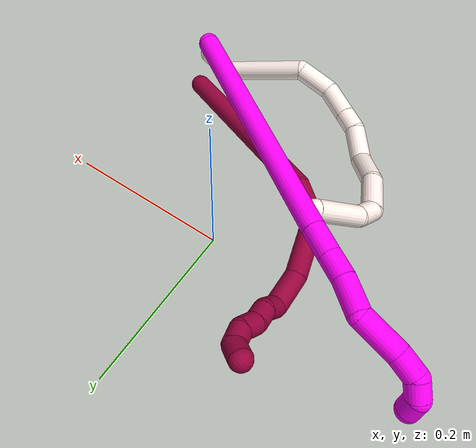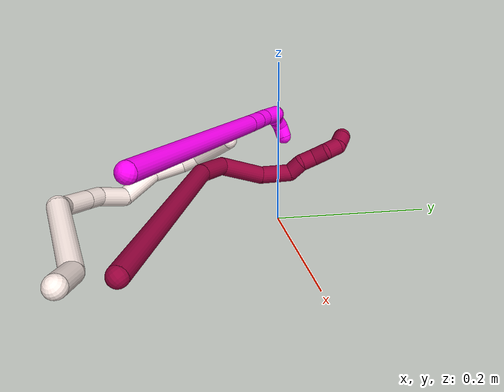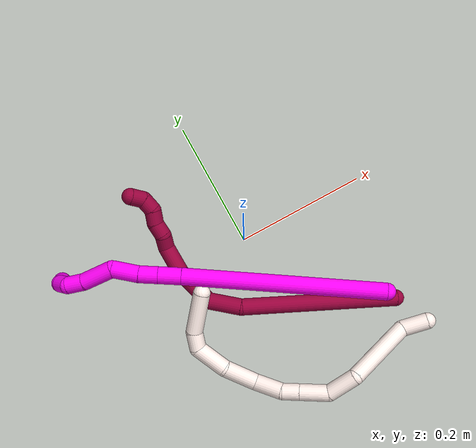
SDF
<sdf version="1.7">
 <world name="default">
  <model name="8">
   <static>0</static>
   <link name="8">
    <collision name="collision-cylinder-e_1_1_4">
     <pose>-0.108845 0.035469 0.030251 -0.86463 -1.16614 0.59087</pose>
     <geometry><cylinder><radius>0.0125</radius><length>0.236815</length></cylinder></geometry>
     <surface>
      <friction><ode><mu>1.16</mu><mu2>1.16</mu2><slip1>0</slip1><slip2>0</slip2></ode></friction>
      <contact><ode><kp>1e+06</kp><kd>1</kd><max_vel>0</max_vel><min_depth>0.001</min_depth></ode></contact>
     </surface>
    </collision>
    <visual name="visual-cylinder-e_1_1_4">
     <pose>-0.108845 0.035469 0.030251 -0.86463 -1.16614 0.59087</pose>
     <geometry><cylinder><radius>0.0125</radius><length>0.236815</length></cylinder></geometry>
     <material><ambient>0.584314 0 0.227451 1</ambient></material>
    </visual>
    <collision name="collision-cylinder-e_2_4_5">
     <pose>-0.240216 0.079653 0.058869 -1.75599 -1.19579 1.37422</pose>
     <geometry><cylinder><radius>0.0125</radius><length>0.048418</length></cylinder></geometry>
     <surface>
      <friction><ode><mu>1.16</mu><mu2>1.16</mu2><slip1>0</slip1><slip2>0</slip2></ode></friction>
      <contact><ode><kp>1e+06</kp><kd>1</kd><max_vel>0</max_vel><min_depth>0.001</min_depth></ode></contact>
     </surface>
    </collision>
    <visual name="visual-cylinder-e_2_4_5">
     <pose>-0.240216 0.079653 0.058869 -1.75599 -1.19579 1.37422</pose>
     <geometry><cylinder><radius>0.0125</radius><length>0.048418</length></cylinder></geometry>
     <material><ambient>0.584314 0 0.227451 1</ambient></material>
    </visual>
    <collision name="collision-cylinder-e_3_5_6">
     <pose>-0.283245 0.102229 0.036137 -2.56037 -0.682105 1.74116</pose>
     <geometry><cylinder><radius>0.0125</radius><length>0.065044</length></cylinder></geometry>
     <surface>
      <friction><ode><mu>1.16</mu><mu2>1.16</mu2><slip1>0</slip1><slip2>0</slip2></ode></friction>
      <contact><ode><kp>1e+06</kp><kd>1</kd><max_vel>0</max_vel><min_depth>0.001</min_depth></ode></contact>
     </surface>
    </collision>
    <visual name="visual-cylinder-e_3_5_6">
     <pose>-0.283245 0.102229 0.036137 -2.56037 -0.682105 1.74116</pose>
     <geometry><cylinder><radius>0.0125</radius><length>0.065044</length></cylinder></geometry>
     <material><ambient>0.584314 0 0.227451 1</ambient></material>
    </visual>
    <collision name="collision-cylinder-e_4_6_7">
     <pose>-0.312094 0.132503 0.00311 -2.1992 -0.390285 0.740179</pose>
     <geometry><cylinder><radius>0.0125</radius><length>0.043877</length></cylinder></geometry>
     <surface>
      <friction><ode><mu>1.16</mu><mu2>1.16</mu2><slip1>0</slip1><slip2>0</slip2></ode></friction>
      <contact><ode><kp>1e+06</kp><kd>1</kd><max_vel>0</max_vel><min_depth>0.001</min_depth></ode></contact>
     </surface>
    </collision>
    <visual name="visual-cylinder-e_4_6_7">
     <pose>-0.312094 0.132503 0.00311 -2.1992 -0.390285 0.740179</pose>
     <geometry><cylinder><radius>0.0125</radius><length>0.043877</length></cylinder></geometry>
     <material><ambient>0.584314 0 0.227451 1</ambient></material>
    </visual>
    <collision name="collision-cylinder-e_5_7_8">
     <pose>-0.319552 0.160194 -0.008849 -1.57361 0.078593 -0.078814</pose>
     <geometry><cylinder><radius>0.0125</radius><length>0.022626</length></cylinder></geometry>
     <surface>
      <friction><ode><mu>1.16</mu><mu2>1.16</mu2><slip1>0</slip1><slip2>0</slip2></ode></friction>
      <contact><ode><kp>1e+06</kp><kd>1</kd><max_vel>0</max_vel><min_depth>0.001</min_depth></ode></contact>
     </surface>
    </collision>
    <visual name="visual-cylinder-e_5_7_8">
     <pose>-0.319552 0.160194 -0.008849 -1.57361 0.078593 -0.078814</pose>
     <geometry><cylinder><radius>0.0125</radius><length>0.022626</length></cylinder></geometry>
     <material><ambient>0.584314 0 0.227451 1</ambient></material>
    </visual>
    <collision name="collision-cylinder-e_6_8_9">
     <pose>-0.322143 0.180769 -0.011586 -1.85403 -0.344955 0.456206</pose>
     <geometry><cylinder><radius>0.0125</radius><length>0.020577</length></cylinder></geometry>
     <surface>
      <friction><ode><mu>1.16</mu><mu2>1.16</mu2><slip1>0</slip1><slip2>0</slip2></ode></friction>
      <contact><ode><kp>1e+06</kp><kd>1</kd><max_vel>0</max_vel><min_depth>0.001</min_depth></ode></contact>
     </surface>
    </collision>
    <visual name="visual-cylinder-e_6_8_9">
     <pose>-0.322143 0.180769 -0.011586 -1.85403 -0.344955 0.456206</pose>
     <geometry><cylinder><radius>0.0125</radius><length>0.020577</length></cylinder></geometry>
     <material><ambient>0.584314 0 0.227451 1</ambient></material>
    </visual>
    <collision name="collision-cylinder-e_7_9_10">
     <pose>-0.324909 0.200189 -0.01717 -1.84779 0.067643 -0.089529</pose>
     <geometry><cylinder><radius>0.0125</radius><length>0.021098</length></cylinder></geometry>
     <surface>
      <friction><ode><mu>1.16</mu><mu2>1.16</mu2><slip1>0</slip1><slip2>0</slip2></ode></friction>
      <contact><ode><kp>1e+06</kp><kd>1</kd><max_vel>0</max_vel><min_depth>0.001</min_depth></ode></contact>
     </surface>
    </collision>
    <visual name="visual-cylinder-e_7_9_10">
     <pose>-0.324909 0.200189 -0.01717 -1.84779 0.067643 -0.089529</pose>
     <geometry><cylinder><radius>0.0125</radius><length>0.021098</length></cylinder></geometry>
     <material><ambient>0.584314 0 0.227451 1</ambient></material>
    </visual>
    <collision name="collision-cylinder-e_8_10_11">
     <pose>-0.328966 0.219108 -0.022147 -1.80503 -0.485405 0.607793</pose>
     <geometry><cylinder><radius>0.0125</radius><length>0.020445</length></cylinder></geometry>
     <surface>
      <friction><ode><mu>1.16</mu><mu2>1.16</mu2><slip1>0</slip1><slip2>0</slip2></ode></friction>
      <contact><ode><kp>1e+06</kp><kd>1</kd><max_vel>0</max_vel><min_depth>0.001</min_depth></ode></contact>
     </surface>
    </collision>
    <visual name="visual-cylinder-e_8_10_11">
     <pose>-0.328966 0.219108 -0.022147 -1.80503 -0.485405 0.607793</pose>
     <geometry><cylinder><radius>0.0125</radius><length>0.020445</length></cylinder></geometry>
     <material><ambient>0.584314 0 0.227451 1</ambient></material>
    </visual>
    <collision name="collision-cylinder-e_9_11_2">
     <pose>-0.341238 0.234404 -0.020674 -1.06849 -0.791058 0.484355</pose>
     <geometry><cylinder><radius>0.0125</radius><length>0.0211</length></cylinder></geometry>
     <surface>
      <friction><ode><mu>1.16</mu><mu2>1.16</mu2><slip1>0</slip1><slip2>0</slip2></ode></friction>
      <contact><ode><kp>1e+06</kp><kd>1</kd><max_vel>0</max_vel><min_depth>0.001</min_depth></ode></contact>
     </surface>
    </collision>
    <visual name="visual-cylinder-e_9_11_2">
     <pose>-0.341238 0.234404 -0.020674 -1.06849 -0.791058 0.484355</pose>
     <geometry><cylinder><radius>0.0125</radius><length>0.0211</length></cylinder></geometry>
     <material><ambient>0.584314 0 0.227451 1</ambient></material>
    </visual>
    <collision name="collision-sphere-2">
     <pose>-0.34874 0.240906 -0.017103 0 -0 0</pose>
     <geometry><sphere><radius>0.0125</radius></sphere></geometry>
     <surface>
      <friction><ode><mu>1.16</mu><mu2>1.16</mu2><slip1>0</slip1><slip2>0</slip2></ode></friction>
      <contact><ode><kp>1e+06</kp><kd>1</kd><max_vel>0</max_vel><min_depth>0.001</min_depth></ode></contact>
     </surface>
    </collision>
    <visual name="visual-sphere-2">
     <pose>-0.34874 0.240906 -0.017103 0 -0 0</pose>
     <geometry><sphere><radius>0.0125</radius></sphere></geometry>
     <material><ambient>0.584314 0 0.227451 1</ambient></material>
    </visual>
    <collision name="collision-sphere-11">
     <pose>-0.333736 0.227903 -0.024246 0 -0 0</pose>
     <geometry><sphere><radius>0.0125</radius></sphere></geometry>
     <surface>
      <friction><ode><mu>1.16</mu><mu2>1.16</mu2><slip1>0</slip1><slip2>0</slip2></ode></friction>
      <contact><ode><kp>1e+06</kp><kd>1</kd><max_vel>0</max_vel><min_depth>0.001</min_depth></ode></contact>
     </surface>
    </collision>
    <visual name="visual-sphere-11">
     <pose>-0.333736 0.227903 -0.024246 0 -0 0</pose>
     <geometry><sphere><radius>0.0125</radius></sphere></geometry>
     <material><ambient>0.584314 0 0.227451 1</ambient></material>
    </visual>
    <collision name="collision-sphere-10">
     <pose>-0.324196 0.210313 -0.020048 0 -0 0</pose>
     <geometry><sphere><radius>0.0125</radius></sphere></geometry>
     <surface>
      <friction><ode><mu>1.16</mu><mu2>1.16</mu2><slip1>0</slip1><slip2>0</slip2></ode></friction>
      <contact><ode><kp>1e+06</kp><kd>1</kd><max_vel>0</max_vel><min_depth>0.001</min_depth></ode></contact>
     </surface>
    </collision>
    <visual name="visual-sphere-10">
     <pose>-0.324196 0.210313 -0.020048 0 -0 0</pose>
     <geometry><sphere><radius>0.0125</radius></sphere></geometry>
     <material><ambient>0.584314 0 0.227451 1</ambient></material>
    </visual>
    <collision name="collision-sphere-9">
     <pose>-0.325622 0.190065 -0.014292 0 -0 0</pose>
     <geometry><sphere><radius>0.0125</radius></sphere></geometry>
     <surface>
      <friction><ode><mu>1.16</mu><mu2>1.16</mu2><slip1>0</slip1><slip2>0</slip2></ode></friction>
      <contact><ode><kp>1e+06</kp><kd>1</kd><max_vel>0</max_vel><min_depth>0.001</min_depth></ode></contact>
     </surface>
    </collision>
    <visual name="visual-sphere-9">
     <pose>-0.325622 0.190065 -0.014292 0 -0 0</pose>
     <geometry><sphere><radius>0.0125</radius></sphere></geometry>
     <material><ambient>0.584314 0 0.227451 1</ambient></material>
    </visual>
    <collision name="collision-sphere-4">
     <pose>-0.217689 0.070938 0.060502 0 -0 0</pose>
     <geometry><sphere><radius>0.0125</radius></sphere></geometry>
     <surface>
      <friction><ode><mu>1.16</mu><mu2>1.16</mu2><slip1>0</slip1><slip2>0</slip2></ode></friction>
      <contact><ode><kp>1e+06</kp><kd>1</kd><max_vel>0</max_vel><min_depth>0.001</min_depth></ode></contact>
     </surface>
    </collision>
    <visual name="visual-sphere-4">
     <pose>-0.217689 0.070938 0.060502 0 -0 0</pose>
     <geometry><sphere><radius>0.0125</radius></sphere></geometry>
     <material><ambient>0.584314 0 0.227451 1</ambient></material>
    </visual>
    <collision name="collision-sphere-1">
     <geometry><sphere><radius>0.0125</radius></sphere></geometry>
     <surface>
      <friction><ode><mu>1.16</mu><mu2>1.16</mu2><slip1>0</slip1><slip2>0</slip2></ode></friction>
      <contact><ode><kp>1e+06</kp><kd>1</kd><max_vel>0</max_vel><min_depth>0.001</min_depth></ode></contact>
     </surface>
    </collision>
    <visual name="visual-sphere-1">
     <geometry><sphere><radius>0.0125</radius></sphere></geometry>
     <material><ambient>0.584314 0 0.227451 1</ambient></material>
    </visual>
    <collision name="collision-sphere-8">
     <pose>-0.318664 0.171472 -0.00888 0 -0 0</pose>
     <geometry><sphere><radius>0.0125</radius></sphere></geometry>
     <surface>
      <friction><ode><mu>1.16</mu><mu2>1.16</mu2><slip1>0</slip1><slip2>0</slip2></ode></friction>
      <contact><ode><kp>1e+06</kp><kd>1</kd><max_vel>0</max_vel><min_depth>0.001</min_depth></ode></contact>
     </surface>
    </collision>
    <visual name="visual-sphere-8">
     <pose>-0.318664 0.171472 -0.00888 0 -0 0</pose>
     <geometry><sphere><radius>0.0125</radius></sphere></geometry>
     <material><ambient>0.584314 0 0.227451 1</ambient></material>
    </visual>
    <collision name="collision-sphere-5">
     <pose>-0.262742 0.088369 0.057236 0 -0 0</pose>
     <geometry><sphere><radius>0.0125</radius></sphere></geometry>
     <surface>
      <friction><ode><mu>1.16</mu><mu2>1.16</mu2><slip1>0</slip1><slip2>0</slip2></ode></friction>
      <contact><ode><kp>1e+06</kp><kd>1</kd><max_vel>0</max_vel><min_depth>0.001</min_depth></ode></contact>
     </surface>
    </collision>
    <visual name="visual-sphere-5">
     <pose>-0.262742 0.088369 0.057236 0 -0 0</pose>
     <geometry><sphere><radius>0.0125</radius></sphere></geometry>
     <material><ambient>0.584314 0 0.227451 1</ambient></material>
    </visual>
    <collision name="collision-sphere-6">
     <pose>-0.303747 0.11609 0.015037 0 -0 0</pose>
     <geometry><sphere><radius>0.0125</radius></sphere></geometry>
     <surface>
      <friction><ode><mu>1.16</mu><mu2>1.16</mu2><slip1>0</slip1><slip2>0</slip2></ode></friction>
      <contact><ode><kp>1e+06</kp><kd>1</kd><max_vel>0</max_vel><min_depth>0.001</min_depth></ode></contact>
     </surface>
    </collision>
    <visual name="visual-sphere-6">
     <pose>-0.303747 0.11609 0.015037 0 -0 0</pose>
     <geometry><sphere><radius>0.0125</radius></sphere></geometry>
     <material><ambient>0.584314 0 0.227451 1</ambient></material>
    </visual>
    <collision name="collision-sphere-7">
     <pose>-0.320441 0.148916 -0.008817 0 -0 0</pose>
     <geometry><sphere><radius>0.0125</radius></sphere></geometry>
     <surface>
      <friction><ode><mu>1.16</mu><mu2>1.16</mu2><slip1>0</slip1><slip2>0</slip2></ode></friction>
      <contact><ode><kp>1e+06</kp><kd>1</kd><max_vel>0</max_vel><min_depth>0.001</min_depth></ode></contact>
     </surface>
    </collision>
    <visual name="visual-sphere-7">
     <pose>-0.320441 0.148916 -0.008817 0 -0 0</pose>
     <geometry><sphere><radius>0.0125</radius></sphere></geometry>
     <material><ambient>0.584314 0 0.227451 1</ambient></material>
    </visual>
    <inertial>
     <pose>-0.208327 0.091426 0.021622 0 -0 0</pose>
     <mass>0.5</mass>
     <inertia>
      <ixx>0.000623</ixx>
      <ixy>0</ixy>
      <ixz>0</ixz>
      <iyy>0.001351</iyy>
      <iyz>0</iyz>
      <izz>0.000694</izz>
     </inertia>
    </inertial>
   </link>
   <pose>0.156955 -0.18961 0.011477 0.759247 -0.238817 -0.384522</pose>
  </model>
  <model name="10">
   <static>0</static>
   <link name="10">
    <collision name="collision-cylinder-e_1_1_4">
     <pose>-0.06371 0.024862 -0.127002 -2.94828 -0.457468 2.35233</pose>
     <geometry><cylinder><radius>0.0125</radius><length>0.288491</length></cylinder></geometry>
     <surface>
      <friction><ode><mu>1.16</mu><mu2>1.16</mu2><slip1>0</slip1><slip2>0</slip2></ode></friction>
      <contact><ode><kp>1e+06</kp><kd>1</kd><max_vel>0</max_vel><min_depth>0.001</min_depth></ode></contact>
     </surface>
    </collision>
    <visual name="visual-cylinder-e_1_1_4">
     <pose>-0.06371 0.024862 -0.127002 -2.94828 -0.457468 2.35233</pose>
     <geometry><cylinder><radius>0.0125</radius><length>0.288491</length></cylinder></geometry>
     <material><ambient>1 0 0.964706 1</ambient></material>
    </visual>
    <collision name="collision-cylinder-e_2_4_5">
     <pose>-0.13503 0.05241 -0.268451 -2.95776 -0.477864 2.41806</pose>
     <geometry><cylinder><radius>0.0125</radius><length>0.033094</length></cylinder></geometry>
     <surface>
      <friction><ode><mu>1.16</mu><mu2>1.16</mu2><slip1>0</slip1><slip2>0</slip2></ode></friction>
      <contact><ode><kp>1e+06</kp><kd>1</kd><max_vel>0</max_vel><min_depth>0.001</min_depth></ode></contact>
     </surface>
    </collision>
    <visual name="visual-cylinder-e_2_4_5">
     <pose>-0.13503 0.05241 -0.268451 -2.95776 -0.477864 2.41806</pose>
     <geometry><cylinder><radius>0.0125</radius><length>0.033094</length></cylinder></geometry>
     <material><ambient>1 0 0.964706 1</ambient></material>
    </visual>
    <collision name="collision-cylinder-e_3_5_6">
     <pose>-0.148989 0.057384 -0.294704 -2.9502 -0.48573 2.40235</pose>
     <geometry><cylinder><radius>0.0125</radius><length>0.0272</length></cylinder></geometry>
     <surface>
      <friction><ode><mu>1.16</mu><mu2>1.16</mu2><slip1>0</slip1><slip2>0</slip2></ode></friction>
      <contact><ode><kp>1e+06</kp><kd>1</kd><max_vel>0</max_vel><min_depth>0.001</min_depth></ode></contact>
     </surface>
    </collision>
    <visual name="visual-cylinder-e_3_5_6">
     <pose>-0.148989 0.057384 -0.294704 -2.9502 -0.48573 2.40235</pose>
     <geometry><cylinder><radius>0.0125</radius><length>0.0272</length></cylinder></geometry>
     <material><ambient>1 0 0.964706 1</ambient></material>
    </visual>
    <collision name="collision-cylinder-e_4_6_7">
     <pose>-0.161972 0.064224 -0.324002 -2.887 -0.351777 1.89333</pose>
     <geometry><cylinder><radius>0.0125</radius><length>0.038503</length></cylinder></geometry>
     <surface>
      <friction><ode><mu>1.16</mu><mu2>1.16</mu2><slip1>0</slip1><slip2>0</slip2></ode></friction>
      <contact><ode><kp>1e+06</kp><kd>1</kd><max_vel>0</max_vel><min_depth>0.001</min_depth></ode></contact>
     </surface>
    </collision>
    <visual name="visual-cylinder-e_4_6_7">
     <pose>-0.161972 0.064224 -0.324002 -2.887 -0.351777 1.89333</pose>
     <geometry><cylinder><radius>0.0125</radius><length>0.038503</length></cylinder></geometry>
     <material><ambient>1 0 0.964706 1</ambient></material>
    </visual>
    <collision name="collision-cylinder-e_5_7_8">
     <pose>-0.183795 0.062069 -0.358264 2.76123 -0.699216 -2.16996</pose>
     <geometry><cylinder><radius>0.0125</radius><length>0.047203</length></cylinder></geometry>
     <surface>
      <friction><ode><mu>1.16</mu><mu2>1.16</mu2><slip1>0</slip1><slip2>0</slip2></ode></friction>
      <contact><ode><kp>1e+06</kp><kd>1</kd><max_vel>0</max_vel><min_depth>0.001</min_depth></ode></contact>
     </surface>
    </collision>
    <visual name="visual-cylinder-e_5_7_8">
     <pose>-0.183795 0.062069 -0.358264 2.76123 -0.699216 -2.16996</pose>
     <geometry><cylinder><radius>0.0125</radius><length>0.047203</length></cylinder></geometry>
     <material><ambient>1 0 0.964706 1</ambient></material>
    </visual>
    <collision name="collision-cylinder-e_6_8_9">
     <pose>-0.205969 0.053578 -0.385492 2.97251 -0.582244 -2.59035</pose>
     <geometry><cylinder><radius>0.0125</radius><length>0.025401</length></cylinder></geometry>
     <surface>
      <friction><ode><mu>1.16</mu><mu2>1.16</mu2><slip1>0</slip1><slip2>0</slip2></ode></friction>
      <contact><ode><kp>1e+06</kp><kd>1</kd><max_vel>0</max_vel><min_depth>0.001</min_depth></ode></contact>
     </surface>
    </collision>
    <visual name="visual-cylinder-e_6_8_9">
     <pose>-0.205969 0.053578 -0.385492 2.97251 -0.582244 -2.59035</pose>
     <geometry><cylinder><radius>0.0125</radius><length>0.025401</length></cylinder></geometry>
     <material><ambient>1 0 0.964706 1</ambient></material>
    </visual>
    <collision name="collision-cylinder-e_7_9_10">
     <pose>-0.212633 0.047464 -0.404964 2.69393 0.032048 0.140559</pose>
     <geometry><cylinder><radius>0.0125</radius><length>0.020012</length></cylinder></geometry>
     <surface>
      <friction><ode><mu>1.16</mu><mu2>1.16</mu2><slip1>0</slip1><slip2>0</slip2></ode></friction>
      <contact><ode><kp>1e+06</kp><kd>1</kd><max_vel>0</max_vel><min_depth>0.001</min_depth></ode></contact>
     </surface>
    </collision>
    <visual name="visual-cylinder-e_7_9_10">
     <pose>-0.212633 0.047464 -0.404964 2.69393 0.032048 0.140559</pose>
     <geometry><cylinder><radius>0.0125</radius><length>0.020012</length></cylinder></geometry>
     <material><ambient>1 0 0.964706 1</ambient></material>
    </visual>
    <collision name="collision-cylinder-e_8_10_2">
     <pose>-0.207199 0.036051 -0.418942 2.18185 0.533926 0.967665</pose>
     <geometry><cylinder><radius>0.0125</radius><length>0.020097</length></cylinder></geometry>
     <surface>
      <friction><ode><mu>1.16</mu><mu2>1.16</mu2><slip1>0</slip1><slip2>0</slip2></ode></friction>
      <contact><ode><kp>1e+06</kp><kd>1</kd><max_vel>0</max_vel><min_depth>0.001</min_depth></ode></contact>
     </surface>
    </collision>
    <visual name="visual-cylinder-e_8_10_2">
     <pose>-0.207199 0.036051 -0.418942 2.18185 0.533926 0.967665</pose>
     <geometry><cylinder><radius>0.0125</radius><length>0.020097</length></cylinder></geometry>
     <material><ambient>1 0 0.964706 1</ambient></material>
    </visual>
    <collision name="collision-sphere-2">
     <pose>-0.202085 0.028966 -0.423905 0 -0 0</pose>
     <geometry><sphere><radius>0.0125</radius></sphere></geometry>
     <surface>
      <friction><ode><mu>1.16</mu><mu2>1.16</mu2><slip1>0</slip1><slip2>0</slip2></ode></friction>
      <contact><ode><kp>1e+06</kp><kd>1</kd><max_vel>0</max_vel><min_depth>0.001</min_depth></ode></contact>
     </surface>
    </collision>
    <visual name="visual-sphere-2">
     <pose>-0.202085 0.028966 -0.423905 0 -0 0</pose>
     <geometry><sphere><radius>0.0125</radius></sphere></geometry>
     <material><ambient>1 0 0.964706 1</ambient></material>
    </visual>
    <collision name="collision-sphere-10">
     <pose>-0.212312 0.043135 -0.41398 0 -0 0</pose>
     <geometry><sphere><radius>0.0125</radius></sphere></geometry>
     <surface>
      <friction><ode><mu>1.16</mu><mu2>1.16</mu2><slip1>0</slip1><slip2>0</slip2></ode></friction>
      <contact><ode><kp>1e+06</kp><kd>1</kd><max_vel>0</max_vel><min_depth>0.001</min_depth></ode></contact>
     </surface>
    </collision>
    <visual name="visual-sphere-10">
     <pose>-0.212312 0.043135 -0.41398 0 -0 0</pose>
     <geometry><sphere><radius>0.0125</radius></sphere></geometry>
     <material><ambient>1 0 0.964706 1</ambient></material>
    </visual>
    <collision name="collision-sphere-9">
     <pose>-0.212953 0.051793 -0.395949 0 -0 0</pose>
     <geometry><sphere><radius>0.0125</radius></sphere></geometry>
     <surface>
      <friction><ode><mu>1.16</mu><mu2>1.16</mu2><slip1>0</slip1><slip2>0</slip2></ode></friction>
      <contact><ode><kp>1e+06</kp><kd>1</kd><max_vel>0</max_vel><min_depth>0.001</min_depth></ode></contact>
     </surface>
    </collision>
    <visual name="visual-sphere-9">
     <pose>-0.212953 0.051793 -0.395949 0 -0 0</pose>
     <geometry><sphere><radius>0.0125</radius></sphere></geometry>
     <material><ambient>1 0 0.964706 1</ambient></material>
    </visual>
    <collision name="collision-sphere-4">
     <pose>-0.12742 0.049724 -0.254005 0 -0 0</pose>
     <geometry><sphere><radius>0.0125</radius></sphere></geometry>
     <surface>
      <friction><ode><mu>1.16</mu><mu2>1.16</mu2><slip1>0</slip1><slip2>0</slip2></ode></friction>
      <contact><ode><kp>1e+06</kp><kd>1</kd><max_vel>0</max_vel><min_depth>0.001</min_depth></ode></contact>
     </surface>
    </collision>
    <visual name="visual-sphere-4">
     <pose>-0.12742 0.049724 -0.254005 0 -0 0</pose>
     <geometry><sphere><radius>0.0125</radius></sphere></geometry>
     <material><ambient>1 0 0.964706 1</ambient></material>
    </visual>
    <collision name="collision-sphere-1">
     <geometry><sphere><radius>0.0125</radius></sphere></geometry>
     <surface>
      <friction><ode><mu>1.16</mu><mu2>1.16</mu2><slip1>0</slip1><slip2>0</slip2></ode></friction>
      <contact><ode><kp>1e+06</kp><kd>1</kd><max_vel>0</max_vel><min_depth>0.001</min_depth></ode></contact>
     </surface>
    </collision>
    <visual name="visual-sphere-1">
     <geometry><sphere><radius>0.0125</radius></sphere></geometry>
     <material><ambient>1 0 0.964706 1</ambient></material>
    </visual>
    <collision name="collision-sphere-8">
     <pose>-0.198985 0.055363 -0.375036 0 -0 0</pose>
     <geometry><sphere><radius>0.0125</radius></sphere></geometry>
     <surface>
      <friction><ode><mu>1.16</mu><mu2>1.16</mu2><slip1>0</slip1><slip2>0</slip2></ode></friction>
      <contact><ode><kp>1e+06</kp><kd>1</kd><max_vel>0</max_vel><min_depth>0.001</min_depth></ode></contact>
     </surface>
    </collision>
    <visual name="visual-sphere-8">
     <pose>-0.198985 0.055363 -0.375036 0 -0 0</pose>
     <geometry><sphere><radius>0.0125</radius></sphere></geometry>
     <material><ambient>1 0 0.964706 1</ambient></material>
    </visual>
    <collision name="collision-sphere-5">
     <pose>-0.14264 0.055096 -0.282897 0 -0 0</pose>
     <geometry><sphere><radius>0.0125</radius></sphere></geometry>
     <surface>
      <friction><ode><mu>1.16</mu><mu2>1.16</mu2><slip1>0</slip1><slip2>0</slip2></ode></friction>
      <contact><ode><kp>1e+06</kp><kd>1</kd><max_vel>0</max_vel><min_depth>0.001</min_depth></ode></contact>
     </surface>
    </collision>
    <visual name="visual-sphere-5">
     <pose>-0.14264 0.055096 -0.282897 0 -0 0</pose>
     <geometry><sphere><radius>0.0125</radius></sphere></geometry>
     <material><ambient>1 0 0.964706 1</ambient></material>
    </visual>
    <collision name="collision-sphere-6">
     <pose>-0.155338 0.059672 -0.306512 0 -0 0</pose>
     <geometry><sphere><radius>0.0125</radius></sphere></geometry>
     <surface>
      <friction><ode><mu>1.16</mu><mu2>1.16</mu2><slip1>0</slip1><slip2>0</slip2></ode></friction>
      <contact><ode><kp>1e+06</kp><kd>1</kd><max_vel>0</max_vel><min_depth>0.001</min_depth></ode></contact>
     </surface>
    </collision>
    <visual name="visual-sphere-6">
     <pose>-0.155338 0.059672 -0.306512 0 -0 0</pose>
     <geometry><sphere><radius>0.0125</radius></sphere></geometry>
     <material><ambient>1 0 0.964706 1</ambient></material>
    </visual>
    <collision name="collision-sphere-7">
     <pose>-0.168605 0.068775 -0.341491 0 -0 0</pose>
     <geometry><sphere><radius>0.0125</radius></sphere></geometry>
     <surface>
      <friction><ode><mu>1.16</mu><mu2>1.16</mu2><slip1>0</slip1><slip2>0</slip2></ode></friction>
      <contact><ode><kp>1e+06</kp><kd>1</kd><max_vel>0</max_vel><min_depth>0.001</min_depth></ode></contact>
     </surface>
    </collision>
    <visual name="visual-sphere-7">
     <pose>-0.168605 0.068775 -0.341491 0 -0 0</pose>
     <geometry><sphere><radius>0.0125</radius></sphere></geometry>
     <material><ambient>1 0 0.964706 1</ambient></material>
    </visual>
    <inertial>
     <pose>-0.110928 0.037811 -0.218481 0 -0 0</pose>
     <mass>0.5</mass>
     <inertia>
      <ixx>-1.3e-05</ixx>
      <ixy>0</ixy>
      <ixz>0</ixz>
      <iyy>0.002815</iyy>
      <iyz>0</iyz>
      <izz>0.000524</izz>
     </inertia>
    </inertial>
   </link>
   <pose>0.131181 -0.177436 0.106902 1.21484 0.296341 0.508568</pose>
  </model>
  <model name="11">
   <static>0</static>
   <link name="11">
    <collision name="collision-cylinder-e_1_1_4">
     <pose>-0.011826 0.00649 -0.014698 -2.7258 -0.634512 1.99951</pose>
     <geometry><cylinder><radius>0.0125</radius><length>0.0399</length></cylinder></geometry>
     <surface>
      <friction><ode><mu>1.16</mu><mu2>1.16</mu2><slip1>0</slip1><slip2>0</slip2></ode></friction>
      <contact><ode><kp>1e+06</kp><kd>1</kd><max_vel>0</max_vel><min_depth>0.001</min_depth></ode></contact>
     </surface>
    </collision>
    <visual name="visual-cylinder-e_1_1_4">
     <pose>-0.011826 0.00649 -0.014698 -2.7258 -0.634512 1.99951</pose>
     <geometry><cylinder><radius>0.0125</radius><length>0.0399</length></cylinder></geometry>
     <material><ambient>1 0.933333 0.909804 1</ambient></material>
    </visual>
    <collision name="collision-cylinder-e_2_4_5">
     <pose>-0.076485 0.020973 -0.042343 -2.58844 -1.29038 2.42031</pose>
     <geometry><cylinder><radius>0.0125</radius><length>0.109961</length></cylinder></geometry>
     <surface>
      <friction><ode><mu>1.16</mu><mu2>1.16</mu2><slip1>0</slip1><slip2>0</slip2></ode></friction>
      <contact><ode><kp>1e+06</kp><kd>1</kd><max_vel>0</max_vel><min_depth>0.001</min_depth></ode></contact>
     </surface>
    </collision>
    <visual name="visual-cylinder-e_2_4_5">
     <pose>-0.076485 0.020973 -0.042343 -2.58844 -1.29038 2.42031</pose>
     <geometry><cylinder><radius>0.0125</radius><length>0.109961</length></cylinder></geometry>
     <material><ambient>1 0.933333 0.909804 1</ambient></material>
    </visual>
    <collision name="collision-cylinder-e_3_5_6">
     <pose>-0.143452 0.02892 -0.073485 3.13902 -0.660447 -3.13408</pose>
     <geometry><cylinder><radius>0.0125</radius><length>0.046079</length></cylinder></geometry>
     <surface>
      <friction><ode><mu>1.16</mu><mu2>1.16</mu2><slip1>0</slip1><slip2>0</slip2></ode></friction>
      <contact><ode><kp>1e+06</kp><kd>1</kd><max_vel>0</max_vel><min_depth>0.001</min_depth></ode></contact>
     </surface>
    </collision>
    <visual name="visual-cylinder-e_3_5_6">
     <pose>-0.143452 0.02892 -0.073485 3.13902 -0.660447 -3.13408</pose>
     <geometry><cylinder><radius>0.0125</radius><length>0.046079</length></cylinder></geometry>
     <material><ambient>1 0.933333 0.909804 1</ambient></material>
    </visual>
    <collision name="collision-cylinder-e_4_6_7">
     <pose>-0.165778 0.041084 -0.107459 -2.48304 -0.389586 1.04722</pose>
     <geometry><cylinder><radius>0.0125</radius><length>0.043136</length></cylinder></geometry>
     <surface>
      <friction><ode><mu>1.16</mu><mu2>1.16</mu2><slip1>0</slip1><slip2>0</slip2></ode></friction>
      <contact><ode><kp>1e+06</kp><kd>1</kd><max_vel>0</max_vel><min_depth>0.001</min_depth></ode></contact>
     </surface>
    </collision>
    <visual name="visual-cylinder-e_4_6_7">
     <pose>-0.165778 0.041084 -0.107459 -2.48304 -0.389586 1.04722</pose>
     <geometry><cylinder><radius>0.0125</radius><length>0.043136</length></cylinder></geometry>
     <material><ambient>1 0.933333 0.909804 1</ambient></material>
    </visual>
    <collision name="collision-cylinder-e_5_7_8">
     <pose>-0.17882 0.060505 -0.13264 -2.48731 -0.388489 1.05078</pose>
     <geometry><cylinder><radius>0.0125</radius><length>0.025605</length></cylinder></geometry>
     <surface>
      <friction><ode><mu>1.16</mu><mu2>1.16</mu2><slip1>0</slip1><slip2>0</slip2></ode></friction>
      <contact><ode><kp>1e+06</kp><kd>1</kd><max_vel>0</max_vel><min_depth>0.001</min_depth></ode></contact>
     </surface>
    </collision>
    <visual name="visual-cylinder-e_5_7_8">
     <pose>-0.17882 0.060505 -0.13264 -2.48731 -0.388489 1.05078</pose>
     <geometry><cylinder><radius>0.0125</radius><length>0.025605</length></cylinder></geometry>
     <material><ambient>1 0.933333 0.909804 1</ambient></material>
    </visual>
    <collision name="collision-cylinder-e_6_8_9">
     <pose>-0.184833 0.081533 -0.158924 -2.45569 -0.053281 0.148982</pose>
     <geometry><cylinder><radius>0.0125</radius><length>0.043693</length></cylinder></geometry>
     <surface>
      <friction><ode><mu>1.16</mu><mu2>1.16</mu2><slip1>0</slip1><slip2>0</slip2></ode></friction>
      <contact><ode><kp>1e+06</kp><kd>1</kd><max_vel>0</max_vel><min_depth>0.001</min_depth></ode></contact>
     </surface>
    </collision>
    <visual name="visual-cylinder-e_6_8_9">
     <pose>-0.184833 0.081533 -0.158924 -2.45569 -0.053281 0.148982</pose>
     <geometry><cylinder><radius>0.0125</radius><length>0.043693</length></cylinder></geometry>
     <material><ambient>1 0.933333 0.909804 1</ambient></material>
    </visual>
    <collision name="collision-cylinder-e_7_9_10">
     <pose>-0.194036 0.120522 -0.181346 -1.78744 -0.302361 0.374596</pose>
     <geometry><cylinder><radius>0.0125</radius><length>0.053998</length></cylinder></geometry>
     <surface>
      <friction><ode><mu>1.16</mu><mu2>1.16</mu2><slip1>0</slip1><slip2>0</slip2></ode></friction>
      <contact><ode><kp>1e+06</kp><kd>1</kd><max_vel>0</max_vel><min_depth>0.001</min_depth></ode></contact>
     </surface>
    </collision>
    <visual name="visual-cylinder-e_7_9_10">
     <pose>-0.194036 0.120522 -0.181346 -1.78744 -0.302361 0.374596</pose>
     <geometry><cylinder><radius>0.0125</radius><length>0.053998</length></cylinder></geometry>
     <material><ambient>1 0.933333 0.909804 1</ambient></material>
    </visual>
    <collision name="collision-cylinder-e_8_10_11">
     <pose>-0.201664 0.167908 -0.196236 -1.96916 0.017074 -0.02571</pose>
     <geometry><cylinder><radius>0.0125</radius><length>0.048208</length></cylinder></geometry>
     <surface>
      <friction><ode><mu>1.16</mu><mu2>1.16</mu2><slip1>0</slip1><slip2>0</slip2></ode></friction>
      <contact><ode><kp>1e+06</kp><kd>1</kd><max_vel>0</max_vel><min_depth>0.001</min_depth></ode></contact>
     </surface>
    </collision>
    <visual name="visual-cylinder-e_8_10_11">
     <pose>-0.201664 0.167908 -0.196236 -1.96916 0.017074 -0.02571</pose>
     <geometry><cylinder><radius>0.0125</radius><length>0.048208</length></cylinder></geometry>
     <material><ambient>1 0.933333 0.909804 1</ambient></material>
    </visual>
    <collision name="collision-cylinder-e_9_11_12">
     <pose>-0.195766 0.201844 -0.202517 -1.31487 0.425179 -0.330243</pose>
     <geometry><cylinder><radius>0.0125</radius><length>0.026603</length></cylinder></geometry>
     <surface>
      <friction><ode><mu>1.16</mu><mu2>1.16</mu2><slip1>0</slip1><slip2>0</slip2></ode></friction>
      <contact><ode><kp>1e+06</kp><kd>1</kd><max_vel>0</max_vel><min_depth>0.001</min_depth></ode></contact>
     </surface>
    </collision>
    <visual name="visual-cylinder-e_9_11_12">
     <pose>-0.195766 0.201844 -0.202517 -1.31487 0.425179 -0.330243</pose>
     <geometry><cylinder><radius>0.0125</radius><length>0.026603</length></cylinder></geometry>
     <material><ambient>1 0.933333 0.909804 1</ambient></material>
    </visual>
    <collision name="collision-cylinder-e_10_12_2">
     <pose>-0.174246 0.234412 -0.182279 -0.881747 0.535767 -0.257592</pose>
     <geometry><cylinder><radius>0.0125</radius><length>0.062814</length></cylinder></geometry>
     <surface>
      <friction><ode><mu>1.16</mu><mu2>1.16</mu2><slip1>0</slip1><slip2>0</slip2></ode></friction>
      <contact><ode><kp>1e+06</kp><kd>1</kd><max_vel>0</max_vel><min_depth>0.001</min_depth></ode></contact>
     </surface>
    </collision>
    <visual name="visual-cylinder-e_10_12_2">
     <pose>-0.174246 0.234412 -0.182279 -0.881747 0.535767 -0.257592</pose>
     <geometry><cylinder><radius>0.0125</radius><length>0.062814</length></cylinder></geometry>
     <material><ambient>1 0.933333 0.909804 1</ambient></material>
    </visual>
    <collision name="collision-sphere-2">
     <pose>-0.158212 0.255256 -0.165108 0 -0 0</pose>
     <geometry><sphere><radius>0.0125</radius></sphere></geometry>
     <surface>
      <friction><ode><mu>1.16</mu><mu2>1.16</mu2><slip1>0</slip1><slip2>0</slip2></ode></friction>
      <contact><ode><kp>1e+06</kp><kd>1</kd><max_vel>0</max_vel><min_depth>0.001</min_depth></ode></contact>
     </surface>
    </collision>
    <visual name="visual-sphere-2">
     <pose>-0.158212 0.255256 -0.165108 0 -0 0</pose>
     <geometry><sphere><radius>0.0125</radius></sphere></geometry>
     <material><ambient>1 0.933333 0.909804 1</ambient></material>
    </visual>
    <collision name="collision-sphere-12">
     <pose>-0.190279 0.213567 -0.19945 0 -0 0</pose>
     <geometry><sphere><radius>0.0125</radius></sphere></geometry>
     <surface>
      <friction><ode><mu>1.16</mu><mu2>1.16</mu2><slip1>0</slip1><slip2>0</slip2></ode></friction>
      <contact><ode><kp>1e+06</kp><kd>1</kd><max_vel>0</max_vel><min_depth>0.001</min_depth></ode></contact>
     </surface>
    </collision>
    <visual name="visual-sphere-12">
     <pose>-0.190279 0.213567 -0.19945 0 -0 0</pose>
     <geometry><sphere><radius>0.0125</radius></sphere></geometry>
     <material><ambient>1 0.933333 0.909804 1</ambient></material>
    </visual>
    <collision name="collision-sphere-11">
     <pose>-0.201252 0.190122 -0.205584 0 -0 0</pose>
     <geometry><sphere><radius>0.0125</radius></sphere></geometry>
     <surface>
      <friction><ode><mu>1.16</mu><mu2>1.16</mu2><slip1>0</slip1><slip2>0</slip2></ode></friction>
      <contact><ode><kp>1e+06</kp><kd>1</kd><max_vel>0</max_vel><min_depth>0.001</min_depth></ode></contact>
     </surface>
    </collision>
    <visual name="visual-sphere-11">
     <pose>-0.201252 0.190122 -0.205584 0 -0 0</pose>
     <geometry><sphere><radius>0.0125</radius></sphere></geometry>
     <material><ambient>1 0.933333 0.909804 1</ambient></material>
    </visual>
    <collision name="collision-sphere-10">
     <pose>-0.202075 0.145694 -0.186887 0 -0 0</pose>
     <geometry><sphere><radius>0.0125</radius></sphere></geometry>
     <surface>
      <friction><ode><mu>1.16</mu><mu2>1.16</mu2><slip1>0</slip1><slip2>0</slip2></ode></friction>
      <contact><ode><kp>1e+06</kp><kd>1</kd><max_vel>0</max_vel><min_depth>0.001</min_depth></ode></contact>
     </surface>
    </collision>
    <visual name="visual-sphere-10">
     <pose>-0.202075 0.145694 -0.186887 0 -0 0</pose>
     <geometry><sphere><radius>0.0125</radius></sphere></geometry>
     <material><ambient>1 0.933333 0.909804 1</ambient></material>
    </visual>
    <collision name="collision-sphere-9">
     <pose>-0.185996 0.095351 -0.175806 0 -0 0</pose>
     <geometry><sphere><radius>0.0125</radius></sphere></geometry>
     <surface>
      <friction><ode><mu>1.16</mu><mu2>1.16</mu2><slip1>0</slip1><slip2>0</slip2></ode></friction>
      <contact><ode><kp>1e+06</kp><kd>1</kd><max_vel>0</max_vel><min_depth>0.001</min_depth></ode></contact>
     </surface>
    </collision>
    <visual name="visual-sphere-9">
     <pose>-0.185996 0.095351 -0.175806 0 -0 0</pose>
     <geometry><sphere><radius>0.0125</radius></sphere></geometry>
     <material><ambient>1 0.933333 0.909804 1</ambient></material>
    </visual>
    <collision name="collision-sphere-4">
     <pose>-0.023652 0.012979 -0.029396 0 -0 0</pose>
     <geometry><sphere><radius>0.0125</radius></sphere></geometry>
     <surface>
      <friction><ode><mu>1.16</mu><mu2>1.16</mu2><slip1>0</slip1><slip2>0</slip2></ode></friction>
      <contact><ode><kp>1e+06</kp><kd>1</kd><max_vel>0</max_vel><min_depth>0.001</min_depth></ode></contact>
     </surface>
    </collision>
    <visual name="visual-sphere-4">
     <pose>-0.023652 0.012979 -0.029396 0 -0 0</pose>
     <geometry><sphere><radius>0.0125</radius></sphere></geometry>
     <material><ambient>1 0.933333 0.909804 1</ambient></material>
    </visual>
    <collision name="collision-sphere-1">
     <geometry><sphere><radius>0.0125</radius></sphere></geometry>
     <surface>
      <friction><ode><mu>1.16</mu><mu2>1.16</mu2><slip1>0</slip1><slip2>0</slip2></ode></friction>
      <contact><ode><kp>1e+06</kp><kd>1</kd><max_vel>0</max_vel><min_depth>0.001</min_depth></ode></contact>
     </surface>
    </collision>
    <visual name="visual-sphere-1">
     <geometry><sphere><radius>0.0125</radius></sphere></geometry>
     <material><ambient>1 0.933333 0.909804 1</ambient></material>
    </visual>
    <collision name="collision-sphere-8">
     <pose>-0.183669 0.067716 -0.142042 0 -0 0</pose>
     <geometry><sphere><radius>0.0125</radius></sphere></geometry>
     <surface>
      <friction><ode><mu>1.16</mu><mu2>1.16</mu2><slip1>0</slip1><slip2>0</slip2></ode></friction>
      <contact><ode><kp>1e+06</kp><kd>1</kd><max_vel>0</max_vel><min_depth>0.001</min_depth></ode></contact>
     </surface>
    </collision>
    <visual name="visual-sphere-8">
     <pose>-0.183669 0.067716 -0.142042 0 -0 0</pose>
     <geometry><sphere><radius>0.0125</radius></sphere></geometry>
     <material><ambient>1 0.933333 0.909804 1</ambient></material>
    </visual>
    <collision name="collision-sphere-5">
     <pose>-0.129318 0.028967 -0.05529 0 -0 0</pose>
     <geometry><sphere><radius>0.0125</radius></sphere></geometry>
     <surface>
      <friction><ode><mu>1.16</mu><mu2>1.16</mu2><slip1>0</slip1><slip2>0</slip2></ode></friction>
      <contact><ode><kp>1e+06</kp><kd>1</kd><max_vel>0</max_vel><min_depth>0.001</min_depth></ode></contact>
     </surface>
    </collision>
    <visual name="visual-sphere-5">
     <pose>-0.129318 0.028967 -0.05529 0 -0 0</pose>
     <geometry><sphere><radius>0.0125</radius></sphere></geometry>
     <material><ambient>1 0.933333 0.909804 1</ambient></material>
    </visual>
    <collision name="collision-sphere-6">
     <pose>-0.157586 0.028873 -0.091679 0 -0 0</pose>
     <geometry><sphere><radius>0.0125</radius></sphere></geometry>
     <surface>
      <friction><ode><mu>1.16</mu><mu2>1.16</mu2><slip1>0</slip1><slip2>0</slip2></ode></friction>
      <contact><ode><kp>1e+06</kp><kd>1</kd><max_vel>0</max_vel><min_depth>0.001</min_depth></ode></contact>
     </surface>
    </collision>
    <visual name="visual-sphere-6">
     <pose>-0.157586 0.028873 -0.091679 0 -0 0</pose>
     <geometry><sphere><radius>0.0125</radius></sphere></geometry>
     <material><ambient>1 0.933333 0.909804 1</ambient></material>
    </visual>
    <collision name="collision-sphere-7">
     <pose>-0.17397 0.053294 -0.123239 0 -0 0</pose>
     <geometry><sphere><radius>0.0125</radius></sphere></geometry>
     <surface>
      <friction><ode><mu>1.16</mu><mu2>1.16</mu2><slip1>0</slip1><slip2>0</slip2></ode></friction>
      <contact><ode><kp>1e+06</kp><kd>1</kd><max_vel>0</max_vel><min_depth>0.001</min_depth></ode></contact>
     </surface>
    </collision>
    <visual name="visual-sphere-7">
     <pose>-0.17397 0.053294 -0.123239 0 -0 0</pose>
     <geometry><sphere><radius>0.0125</radius></sphere></geometry>
     <material><ambient>1 0.933333 0.909804 1</ambient></material>
    </visual>
    <inertial>
     <pose>-0.143302 0.090957 -0.119388 0 -0 0</pose>
     <mass>0.5</mass>
     <inertia><ixx>4.8e-05</ixx><ixy>0</ixy><ixz>0</ixz><iyy>0.000184</iyy><iyz>0</iyz><izz>3.1e-05</izz></inertia>
    </inertial>
   </link>
   <pose>0.179824 -0.242464 0.017058 0.565593 0.45837 0.526933</pose>
  </model>
 </world>
</sdf>
